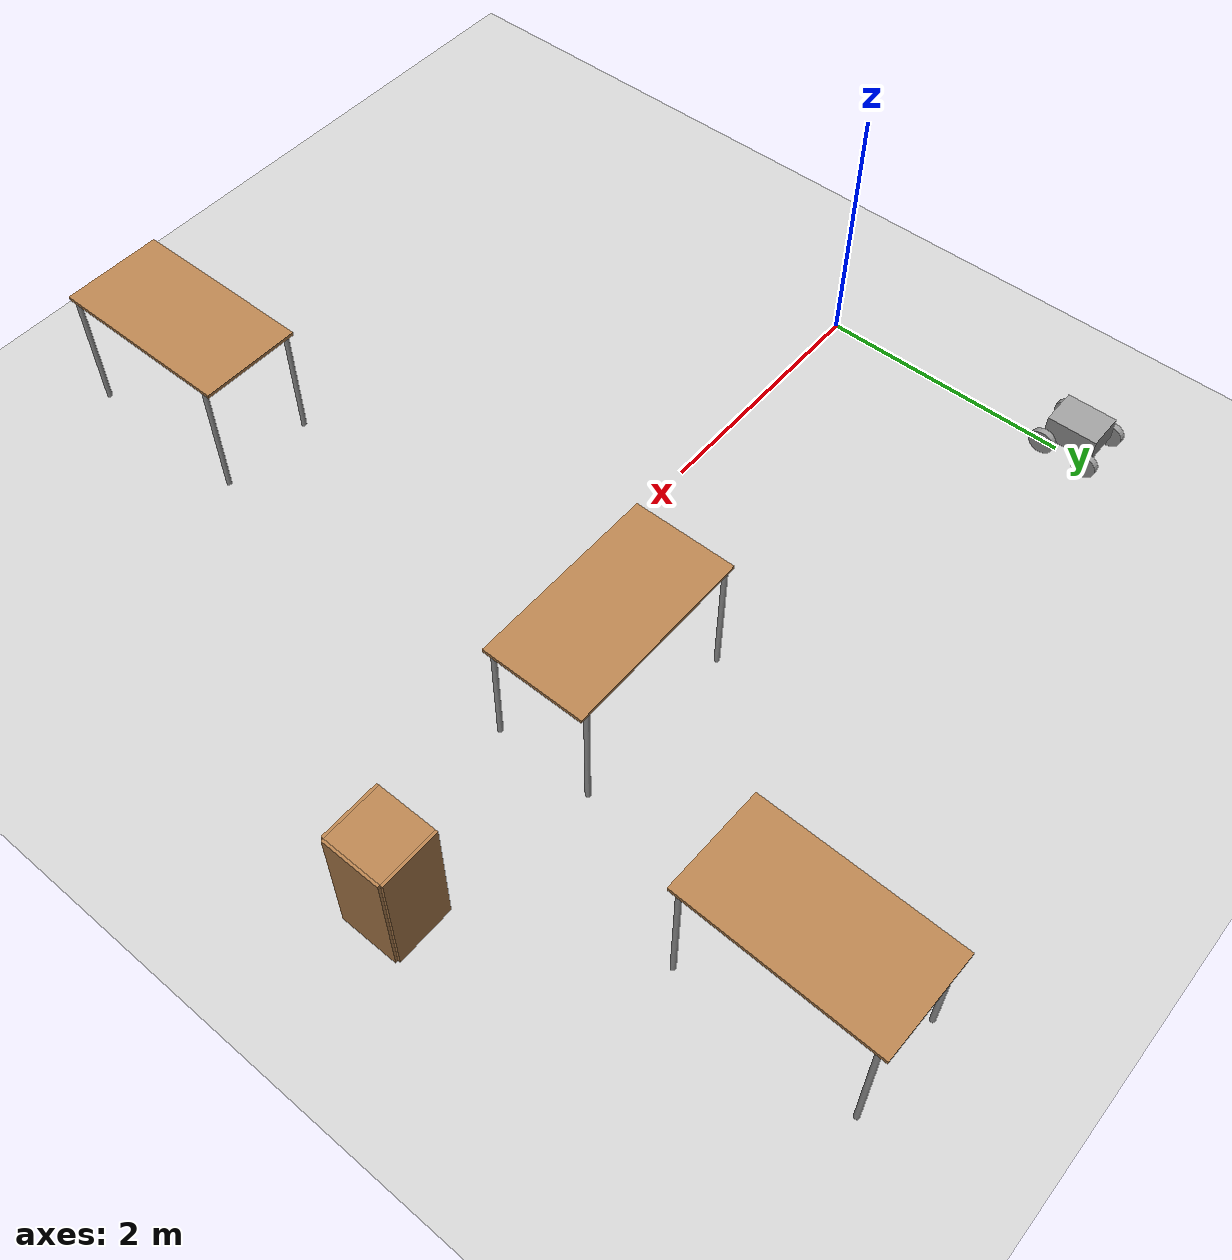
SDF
<sdf version="1.6">
 <world name="default">
  <model name="ground_plane">
   <static>1</static>
   <link name="link">
    <collision name="collision">
     <geometry><plane><normal>0 0 1</normal><size>100 100</size></plane></geometry>
     <surface><friction><ode><mu>100</mu><mu2>50</mu2></ode></friction></surface>
    </collision>
    <visual name="visual">
     <cast_shadows>0</cast_shadows>
     <geometry><plane><normal>0 0 1</normal><size>100 100</size></plane></geometry>
     <material>
      <script><uri>file://media/materials/scripts/gazebo.material</uri><name>Gazebo/Grey</name></script>
     </material>
    </visual>
   </link>
  </model>
  <model name="table_0">
   <static>1</static>
   <link name="link">
    <collision name="surface">
     <pose>0 0 1 0 -0 0</pose>
     <geometry><box><size>1.5 0.8 0.03</size></box></geometry>
     <surface><friction><ode><mu>0.6</mu><mu2>0.6</mu2></ode></friction></surface>
    </collision>
    <visual name="visual1">
     <pose>0 0 1 0 -0 0</pose>
     <geometry><box><size>1.5 0.8 0.03</size></box></geometry>
     <material>
      <script><uri>file://media/materials/scripts/gazebo.material</uri><name>Gazebo/Wood</name></script>
     </material>
    </visual>
    <collision name="front_left_leg">
     <pose>0.68 0.38 0.5 0 -0 0</pose>
     <geometry><cylinder><radius>0.02</radius><length>1</length></cylinder></geometry>
    </collision>
    <visual name="front_left_leg">
     <pose>0.68 0.38 0.5 0 -0 0</pose>
     <geometry><cylinder><radius>0.02</radius><length>1</length></cylinder></geometry>
     <material>
      <script><uri>file://media/materials/scripts/gazebo.material</uri><name>Gazebo/Grey</name></script>
     </material>
    </visual>
    <collision name="front_right_leg">
     <pose>0.68 -0.38 0.5 0 -0 0</pose>
     <geometry><cylinder><radius>0.02</radius><length>1</length></cylinder></geometry>
    </collision>
    <visual name="front_right_leg">
     <pose>0.68 -0.38 0.5 0 -0 0</pose>
     <geometry><cylinder><radius>0.02</radius><length>1</length></cylinder></geometry>
     <material>
      <script><uri>file://media/materials/scripts/gazebo.material</uri><name>Gazebo/Grey</name></script>
     </material>
    </visual>
    <collision name="back_right_leg">
     <pose>-0.68 -0.38 0.5 0 -0 0</pose>
     <geometry><cylinder><radius>0.02</radius><length>1</length></cylinder></geometry>
    </collision>
    <visual name="back_right_leg">
     <pose>-0.68 -0.38 0.5 0 -0 0</pose>
     <geometry><cylinder><radius>0.02</radius><length>1</length></cylinder></geometry>
     <material>
      <script><uri>file://media/materials/scripts/gazebo.material</uri><name>Gazebo/Grey</name></script>
     </material>
    </visual>
    <collision name="back_left_leg">
     <pose>-0.68 0.38 0.5 0 -0 0</pose>
     <geometry><cylinder><radius>0.02</radius><length>1</length></cylinder></geometry>
    </collision>
    <visual name="back_left_leg">
     <pose>-0.68 0.38 0.5 0 -0 0</pose>
     <geometry><cylinder><radius>0.02</radius><length>1</length></cylinder></geometry>
     <material>
      <script><uri>file://media/materials/scripts/gazebo.material</uri><name>Gazebo/Grey</name></script>
     </material>
    </visual>
   </link>
   <pose>3.8393 -3.17845 0 0 0 -1.57539</pose>
  </model>
  <model name="table_2">
   <static>1</static>
   <link name="link">
    <collision name="surface">
     <pose>0 0 1 0 -0 0</pose>
     <geometry><box><size>1.5 0.8 0.03</size></box></geometry>
     <surface><friction><ode><mu>0.6</mu><mu2>0.6</mu2></ode></friction></surface>
    </collision>
    <visual name="visual1">
     <pose>0 0 1 0 -0 0</pose>
     <geometry><box><size>1.5 0.8 0.03</size></box></geometry>
     <material>
      <script><uri>file://media/materials/scripts/gazebo.material</uri><name>Gazebo/Wood</name></script>
     </material>
    </visual>
    <collision name="front_left_leg">
     <pose>0.68 0.38 0.5 0 -0 0</pose>
     <geometry><cylinder><radius>0.02</radius><length>1</length></cylinder></geometry>
    </collision>
    <visual name="front_left_leg">
     <pose>0.68 0.38 0.5 0 -0 0</pose>
     <geometry><cylinder><radius>0.02</radius><length>1</length></cylinder></geometry>
     <material>
      <script><uri>file://media/materials/scripts/gazebo.material</uri><name>Gazebo/Grey</name></script>
     </material>
    </visual>
    <collision name="front_right_leg">
     <pose>0.68 -0.38 0.5 0 -0 0</pose>
     <geometry><cylinder><radius>0.02</radius><length>1</length></cylinder></geometry>
    </collision>
    <visual name="front_right_leg">
     <pose>0.68 -0.38 0.5 0 -0 0</pose>
     <geometry><cylinder><radius>0.02</radius><length>1</length></cylinder></geometry>
     <material>
      <script><uri>file://media/materials/scripts/gazebo.material</uri><name>Gazebo/Grey</name></script>
     </material>
    </visual>
    <collision name="back_right_leg">
     <pose>-0.68 -0.38 0.5 0 -0 0</pose>
     <geometry><cylinder><radius>0.02</radius><length>1</length></cylinder></geometry>
    </collision>
    <visual name="back_right_leg">
     <pose>-0.68 -0.38 0.5 0 -0 0</pose>
     <geometry><cylinder><radius>0.02</radius><length>1</length></cylinder></geometry>
     <material>
      <script><uri>file://media/materials/scripts/gazebo.material</uri><name>Gazebo/Grey</name></script>
     </material>
    </visual>
    <collision name="back_left_leg">
     <pose>-0.68 0.38 0.5 0 -0 0</pose>
     <geometry><cylinder><radius>0.02</radius><length>1</length></cylinder></geometry>
    </collision>
    <visual name="back_left_leg">
     <pose>-0.68 0.38 0.5 0 -0 0</pose>
     <geometry><cylinder><radius>0.02</radius><length>1</length></cylinder></geometry>
     <material>
      <script><uri>file://media/materials/scripts/gazebo.material</uri><name>Gazebo/Grey</name></script>
     </material>
    </visual>
   </link>
   <pose>4.71806 3.06355 0.01204 0 -0 1.54897</pose>
  </model>
  <model name="cabinet_0">
   <static>1</static>
   <link name="cabinet_bottom_plate">
    <inertial>
     <pose>0 0 -1 0 -0 0</pose>
     <inertia><ixx>2.05</ixx><ixy>0</ixy><ixz>0</ixz><iyy>2.05</iyy><iyz>0</iyz><izz>2.05</izz></inertia>
     <mass>25</mass>
    </inertial>
    <collision name="cabinet_bottom_plate_geom">
     <pose>0 0 0.01 0 -0 0</pose>
     <geometry><box><size>0.45 0.45 0.02</size></box></geometry>
    </collision>
    <visual name="cabinet_bottom_plate_geom_visual">
     <pose>0 0 0.01 0 -0 0</pose>
     <geometry><box><size>0.45 0.45 0.02</size></box></geometry>
     <material>
      <script><uri>file://media/materials/scripts/gazebo.material</uri><name>Gazebo/Wood</name></script>
     </material>
    </visual>
    <collision name="cabinet_bottom_plate_geom_cabinet_back_plate">
     <pose>0.235 0 0.51 0 -0 0</pose>
     <geometry><box><size>0.02 0.45 1.02</size></box></geometry>
    </collision>
    <visual name="cabinet_bottom_plate_geom_cabinet_back_plate_visual">
     <pose>0.235 0 0.51 0 -0 0</pose>
     <geometry><box><size>0.02 0.45 1.02</size></box></geometry>
     <material>
      <script><uri>file://media/materials/scripts/gazebo.material</uri><name>Gazebo/Wood</name></script>
     </material>
    </visual>
    <collision name="cabinet_bottom_plate_geom_cabinet_left_plate">
     <pose>0 0.235 0.51 0 -0 0</pose>
     <geometry><box><size>0.45 0.02 1.02</size></box></geometry>
    </collision>
    <visual name="cabinet_bottom_plate_geom_cabinet_left_plate_visual">
     <pose>0 0.235 0.51 0 -0 0</pose>
     <geometry><box><size>0.45 0.02 1.02</size></box></geometry>
     <material>
      <script><uri>file://media/materials/scripts/gazebo.material</uri><name>Gazebo/Wood</name></script>
     </material>
    </visual>
    <collision name="cabinet_bottom_plate_geom_cabinet_middle_plate">
     <pose>0 0 0.51 0 -0 0</pose>
     <geometry><box><size>0.45 0.45 0.02</size></box></geometry>
    </collision>
    <visual name="cabinet_bottom_plate_geom_cabinet_middle_plate_visual">
     <pose>0 0 0.51 0 -0 0</pose>
     <geometry><box><size>0.45 0.45 0.02</size></box></geometry>
     <material>
      <script><uri>file://media/materials/scripts/gazebo.material</uri><name>Gazebo/Wood</name></script>
     </material>
    </visual>
    <collision name="cabinet_bottom_plate_geom_cabinet_right_plate">
     <pose>0 -0.235 0.51 0 -0 0</pose>
     <geometry><box><size>0.45 0.02 1.02</size></box></geometry>
    </collision>
    <visual name="cabinet_bottom_plate_geom_cabinet_right_plate_visual">
     <pose>0 -0.235 0.51 0 -0 0</pose>
     <geometry><box><size>0.45 0.02 1.02</size></box></geometry>
     <material>
      <script><uri>file://media/materials/scripts/gazebo.material</uri><name>Gazebo/Wood</name></script>
     </material>
    </visual>
    <collision name="cabinet_bottom_plate_geom_cabinet_top_plate">
     <pose>0 0 1.01 0 -0 0</pose>
     <geometry><box><size>0.45 0.45 0.02</size></box></geometry>
    </collision>
    <visual name="cabinet_bottom_plate_geom_cabinet_top_plate_visual">
     <pose>0 0 1.01 0 -0 0</pose>
     <geometry><box><size>0.45 0.45 0.02</size></box></geometry>
     <material>
      <script><uri>file://media/materials/scripts/gazebo.material</uri><name>Gazebo/Wood</name></script>
     </material>
    </visual>
   </link>
   <pose>5.8872 0.845437 0 0 -0 0</pose>
  </model>
  <model name="table_3">
   <static>1</static>
   <link name="link">
    <collision name="surface">
     <pose>0 0 1 0 -0 0</pose>
     <geometry><box><size>1.5 0.8 0.03</size></box></geometry>
     <surface><friction><ode><mu>0.6</mu><mu2>0.6</mu2></ode></friction></surface>
    </collision>
    <visual name="visual1">
     <pose>0 0 1 0 -0 0</pose>
     <geometry><box><size>1.5 0.8 0.03</size></box></geometry>
     <material>
      <script><uri>file://media/materials/scripts/gazebo.material</uri><name>Gazebo/Wood</name></script>
     </material>
    </visual>
    <collision name="front_left_leg">
     <pose>0.68 0.38 0.5 0 -0 0</pose>
     <geometry><cylinder><radius>0.02</radius><length>1</length></cylinder></geometry>
    </collision>
    <visual name="front_left_leg">
     <pose>0.68 0.38 0.5 0 -0 0</pose>
     <geometry><cylinder><radius>0.02</radius><length>1</length></cylinder></geometry>
     <material>
      <script><uri>file://media/materials/scripts/gazebo.material</uri><name>Gazebo/Grey</name></script>
     </material>
    </visual>
    <collision name="front_right_leg">
     <pose>0.68 -0.38 0.5 0 -0 0</pose>
     <geometry><cylinder><radius>0.02</radius><length>1</length></cylinder></geometry>
    </collision>
    <visual name="front_right_leg">
     <pose>0.68 -0.38 0.5 0 -0 0</pose>
     <geometry><cylinder><radius>0.02</radius><length>1</length></cylinder></geometry>
     <material>
      <script><uri>file://media/materials/scripts/gazebo.material</uri><name>Gazebo/Grey</name></script>
     </material>
    </visual>
    <collision name="back_right_leg">
     <pose>-0.68 -0.38 0.5 0 -0 0</pose>
     <geometry><cylinder><radius>0.02</radius><length>1</length></cylinder></geometry>
    </collision>
    <visual name="back_right_leg">
     <pose>-0.68 -0.38 0.5 0 -0 0</pose>
     <geometry><cylinder><radius>0.02</radius><length>1</length></cylinder></geometry>
     <material>
      <script><uri>file://media/materials/scripts/gazebo.material</uri><name>Gazebo/Grey</name></script>
     </material>
    </visual>
    <collision name="back_left_leg">
     <pose>-0.68 0.38 0.5 0 -0 0</pose>
     <geometry><cylinder><radius>0.02</radius><length>1</length></cylinder></geometry>
    </collision>
    <visual name="back_left_leg">
     <pose>-0.68 0.38 0.5 0 -0 0</pose>
     <geometry><cylinder><radius>0.02</radius><length>1</length></cylinder></geometry>
     <material>
      <script><uri>file://media/materials/scripts/gazebo.material</uri><name>Gazebo/Grey</name></script>
     </material>
    </visual>
   </link>
   <pose>3.8292 0.836681 0 0 -0 0</pose>
  </model>
  <model name="robot2">
   <link name="link_0">
    <pose>-0.200401 -0.001883 -0.075891 0 -0 0</pose>
    <inertial>
     <mass>1</mass>
     <inertia>
      <ixx>0.166667</ixx>
      <ixy>0</ixy>
      <ixz>0</ixz>
      <iyy>0.166667</iyy>
      <iyz>0</iyz>
      <izz>0.166667</izz>
     </inertia>
    </inertial>
    <visual name="visual">
     <geometry><box><size>0.3 0.4 0.2</size></box></geometry>
     <material>
      <lighting>1</lighting>
      <script><uri>file://media/materials/scripts/gazebo.material</uri><name>Gazebo/Grey</name></script>
      <shader type="pixel"><normal_map>__default__</normal_map></shader>
      <ambient>0.3 0.3 0.3 1</ambient>
      <diffuse>0.7 0.7 0.7 1</diffuse>
      <specular>0.01 0.01 0.01 1</specular>
      <emissive>0 0 0 1</emissive>
     </material>
    </visual>
    <collision name="collision">
     <geometry><box><size>0.3 0.4 0.2</size></box></geometry>
     <surface>
      <friction>
       <ode><mu>1</mu><mu2>1</mu2><fdir1>0 0 0</fdir1><slip1>0</slip1><slip2>0</slip2></ode>
       <torsional>
        <coefficient>1</coefficient>
        <patch_radius>0</patch_radius>
        <surface_radius>0</surface_radius>
        <use_patch_radius>1</use_patch_radius>
        <ode><slip>0</slip></ode>
       </torsional>
      </friction>
      <bounce><restitution_coefficient>0</restitution_coefficient><threshold>1e+06</threshold></bounce>
      <contact>
       <collide_without_contact>0</collide_without_contact>
       <collide_without_contact_bitmask>1</collide_without_contact_bitmask>
       <collide_bitmask>1</collide_bitmask>
       <ode>
        <soft_cfm>0</soft_cfm>
        <soft_erp>0.2</soft_erp>
        <kp>1e+13</kp>
        <kd>1</kd>
        <max_vel>0.01</max_vel>
        <min_depth>0</min_depth>
       </ode>
       <bullet>
        <split_impulse>1</split_impulse>
        <split_impulse_penetration_threshold>-0.01</split_impulse_penetration_threshold>
        <soft_cfm>0</soft_cfm>
        <soft_erp>0.2</soft_erp>
        <kp>1e+13</kp>
        <kd>1</kd>
       </bullet>
      </contact>
     </surface>
    </collision>
   </link>
   <link name="link_1">
    <pose>-0.386156 -0.18012 -0.175891 1.5707 0 1.5707</pose>
    <inertial>
     <mass>1</mass>
     <inertia><ixx>0.145833</ixx><ixy>0</ixy><ixz>0</ixz><iyy>0.145833</iyy><iyz>0</iyz><izz>0.125</izz></inertia>
    </inertial>
    <visual name="visual">
     <geometry><cylinder><radius>0.1</radius><length>0.05</length></cylinder></geometry>
     <material>
      <lighting>1</lighting>
      <script><uri>file://media/materials/scripts/gazebo.material</uri><name>Gazebo/Grey</name></script>
      <shader type="pixel"><normal_map>__default__</normal_map></shader>
      <ambient>0.3 0.3 0.3 1</ambient>
      <diffuse>0.7 0.7 0.7 1</diffuse>
      <specular>0.01 0.01 0.01 1</specular>
      <emissive>0 0 0 1</emissive>
     </material>
    </visual>
    <collision name="collision">
     <geometry><cylinder><radius>0.1</radius><length>0.05</length></cylinder></geometry>
     <surface>
      <friction>
       <ode><mu>1</mu><mu2>1</mu2><fdir1>0 0 0</fdir1><slip1>0</slip1><slip2>0</slip2></ode>
       <torsional>
        <coefficient>1</coefficient>
        <patch_radius>0</patch_radius>
        <surface_radius>0</surface_radius>
        <use_patch_radius>1</use_patch_radius>
        <ode><slip>0</slip></ode>
       </torsional>
      </friction>
      <bounce><restitution_coefficient>0</restitution_coefficient><threshold>1e+06</threshold></bounce>
      <contact>
       <collide_without_contact>0</collide_without_contact>
       <collide_without_contact_bitmask>1</collide_without_contact_bitmask>
       <collide_bitmask>1</collide_bitmask>
       <ode>
        <soft_cfm>0</soft_cfm>
        <soft_erp>0.2</soft_erp>
        <kp>1e+13</kp>
        <kd>1</kd>
        <max_vel>0.01</max_vel>
        <min_depth>0</min_depth>
       </ode>
       <bullet>
        <split_impulse>1</split_impulse>
        <split_impulse_penetration_threshold>-0.01</split_impulse_penetration_threshold>
        <soft_cfm>0</soft_cfm>
        <soft_erp>0.2</soft_erp>
        <kp>1e+13</kp>
        <kd>1</kd>
       </bullet>
      </contact>
     </surface>
    </collision>
   </link>
   <link name="link_1_clone">
    <pose>-0.006156 -0.18012 -0.175891 1.5707 0 1.5707</pose>
    <inertial>
     <mass>1</mass>
     <inertia><ixx>0.145833</ixx><ixy>0</ixy><ixz>0</ixz><iyy>0.145833</iyy><iyz>0</iyz><izz>0.125</izz></inertia>
    </inertial>
    <visual name="visual">
     <geometry><cylinder><radius>0.1</radius><length>0.05</length></cylinder></geometry>
     <material>
      <lighting>1</lighting>
      <script><uri>file://media/materials/scripts/gazebo.material</uri><name>Gazebo/Grey</name></script>
      <shader type="pixel"><normal_map>__default__</normal_map></shader>
      <ambient>0.3 0.3 0.3 1</ambient>
      <diffuse>0.7 0.7 0.7 1</diffuse>
      <specular>0.01 0.01 0.01 1</specular>
      <emissive>0 0 0 1</emissive>
     </material>
    </visual>
    <collision name="collision">
     <geometry><cylinder><radius>0.1</radius><length>0.05</length></cylinder></geometry>
     <surface>
      <friction>
       <ode><mu>1</mu><mu2>1</mu2><fdir1>0 0 0</fdir1><slip1>0</slip1><slip2>0</slip2></ode>
       <torsional>
        <coefficient>1</coefficient>
        <patch_radius>0</patch_radius>
        <surface_radius>0</surface_radius>
        <use_patch_radius>1</use_patch_radius>
        <ode><slip>0</slip></ode>
       </torsional>
      </friction>
      <bounce><restitution_coefficient>0</restitution_coefficient><threshold>1e+06</threshold></bounce>
      <contact>
       <collide_without_contact>0</collide_without_contact>
       <collide_without_contact_bitmask>1</collide_without_contact_bitmask>
       <collide_bitmask>1</collide_bitmask>
       <ode>
        <soft_cfm>0</soft_cfm>
        <soft_erp>0.2</soft_erp>
        <kp>1e+13</kp>
        <kd>1</kd>
        <max_vel>0.01</max_vel>
        <min_depth>0</min_depth>
       </ode>
       <bullet>
        <split_impulse>1</split_impulse>
        <split_impulse_penetration_threshold>-0.01</split_impulse_penetration_threshold>
        <soft_cfm>0</soft_cfm>
        <soft_erp>0.2</soft_erp>
        <kp>1e+13</kp>
        <kd>1</kd>
       </bullet>
      </contact>
     </surface>
    </collision>
   </link>
   <link name="link_1_clone_0">
    <pose>0.003844 0.17988 -0.175891 1.5707 0 1.5707</pose>
    <inertial>
     <mass>1</mass>
     <inertia><ixx>0.145833</ixx><ixy>0</ixy><ixz>0</ixz><iyy>0.145833</iyy><iyz>0</iyz><izz>0.125</izz></inertia>
    </inertial>
    <visual name="visual">
     <geometry><cylinder><radius>0.1</radius><length>0.05</length></cylinder></geometry>
     <material>
      <lighting>1</lighting>
      <script><uri>file://media/materials/scripts/gazebo.material</uri><name>Gazebo/Grey</name></script>
      <shader type="pixel"><normal_map>__default__</normal_map></shader>
      <ambient>0.3 0.3 0.3 1</ambient>
      <diffuse>0.7 0.7 0.7 1</diffuse>
      <specular>0.01 0.01 0.01 1</specular>
      <emissive>0 0 0 1</emissive>
     </material>
    </visual>
    <collision name="collision">
     <geometry><cylinder><radius>0.1</radius><length>0.05</length></cylinder></geometry>
     <surface>
      <friction>
       <ode><mu>1</mu><mu2>1</mu2><fdir1>0 0 0</fdir1><slip1>0</slip1><slip2>0</slip2></ode>
       <torsional>
        <coefficient>1</coefficient>
        <patch_radius>0</patch_radius>
        <surface_radius>0</surface_radius>
        <use_patch_radius>1</use_patch_radius>
        <ode><slip>0</slip></ode>
       </torsional>
      </friction>
      <bounce><restitution_coefficient>0</restitution_coefficient><threshold>1e+06</threshold></bounce>
      <contact>
       <collide_without_contact>0</collide_without_contact>
       <collide_without_contact_bitmask>1</collide_without_contact_bitmask>
       <collide_bitmask>1</collide_bitmask>
       <ode>
        <soft_cfm>0</soft_cfm>
        <soft_erp>0.2</soft_erp>
        <kp>1e+13</kp>
        <kd>1</kd>
        <max_vel>0.01</max_vel>
        <min_depth>0</min_depth>
       </ode>
       <bullet>
        <split_impulse>1</split_impulse>
        <split_impulse_penetration_threshold>-0.01</split_impulse_penetration_threshold>
        <soft_cfm>0</soft_cfm>
        <soft_erp>0.2</soft_erp>
        <kp>1e+13</kp>
        <kd>1</kd>
       </bullet>
      </contact>
     </surface>
    </collision>
   </link>
   <link name="link_1_clone_1">
    <pose>-0.386156 0.17988 -0.175891 1.5707 0 1.5707</pose>
    <inertial>
     <mass>1</mass>
     <inertia><ixx>0.145833</ixx><ixy>0</ixy><ixz>0</ixz><iyy>0.145833</iyy><iyz>0</iyz><izz>0.125</izz></inertia>
    </inertial>
    <visual name="visual">
     <geometry><cylinder><radius>0.1</radius><length>0.05</length></cylinder></geometry>
     <material>
      <lighting>1</lighting>
      <script><uri>file://media/materials/scripts/gazebo.material</uri><name>Gazebo/Grey</name></script>
      <shader type="pixel"><normal_map>__default__</normal_map></shader>
      <ambient>0.3 0.3 0.3 1</ambient>
      <diffuse>0.7 0.7 0.7 1</diffuse>
      <specular>0.01 0.01 0.01 1</specular>
      <emissive>0 0 0 1</emissive>
     </material>
    </visual>
    <collision name="collision">
     <geometry><cylinder><radius>0.1</radius><length>0.05</length></cylinder></geometry>
     <surface>
      <friction>
       <ode><mu>1</mu><mu2>1</mu2><fdir1>0 0 0</fdir1><slip1>0</slip1><slip2>0</slip2></ode>
       <torsional>
        <coefficient>1</coefficient>
        <patch_radius>0</patch_radius>
        <surface_radius>0</surface_radius>
        <use_patch_radius>1</use_patch_radius>
        <ode><slip>0</slip></ode>
       </torsional>
      </friction>
      <bounce><restitution_coefficient>0</restitution_coefficient><threshold>1e+06</threshold></bounce>
      <contact>
       <collide_without_contact>0</collide_without_contact>
       <collide_without_contact_bitmask>1</collide_without_contact_bitmask>
       <collide_bitmask>1</collide_bitmask>
       <ode>
        <soft_cfm>0</soft_cfm>
        <soft_erp>0.2</soft_erp>
        <kp>1e+13</kp>
        <kd>1</kd>
        <max_vel>0.01</max_vel>
        <min_depth>0</min_depth>
       </ode>
       <bullet>
        <split_impulse>1</split_impulse>
        <split_impulse_penetration_threshold>-0.01</split_impulse_penetration_threshold>
        <soft_cfm>0</soft_cfm>
        <soft_erp>0.2</soft_erp>
        <kp>1e+13</kp>
        <kd>1</kd>
       </bullet>
      </contact>
     </surface>
    </collision>
   </link>
   <joint name="link_0_JOINT_0" type="revolute">
    <parent>link_0</parent>
    <child>link_1_clone</child>
    <axis>
     <xyz>1 0 0</xyz>
     <use_parent_model_frame>0</use_parent_model_frame>
     <limit>
      <lower>-1.79769e+308</lower>
      <upper>1.79769e+308</upper>
      <effort>-1</effort>
      <velocity>-1</velocity>
     </limit>
     <dynamics>
      <spring_reference>0</spring_reference>
      <spring_stiffness>0</spring_stiffness>
      <damping>0</damping>
     </dynamics>
    </axis>
    <physics>
     <ode><limit><cfm>0</cfm><erp>0.2</erp></limit><suspension><cfm>0</cfm><erp>0.2</erp></suspension></ode>
    </physics>
   </joint>
   <joint name="link_0_JOINT_1" type="revolute">
    <parent>link_0</parent>
    <child>link_1_clone_0</child>
    <axis>
     <xyz>1 0 0</xyz>
     <use_parent_model_frame>0</use_parent_model_frame>
     <limit>
      <lower>-1.79769e+308</lower>
      <upper>1.79769e+308</upper>
      <effort>-1</effort>
      <velocity>-1</velocity>
     </limit>
     <dynamics>
      <spring_reference>0</spring_reference>
      <spring_stiffness>0</spring_stiffness>
      <damping>0</damping>
     </dynamics>
    </axis>
    <physics>
     <ode><limit><cfm>0</cfm><erp>0.2</erp></limit><suspension><cfm>0</cfm><erp>0.2</erp></suspension></ode>
    </physics>
   </joint>
   <joint name="link_0_JOINT_2" type="revolute">
    <parent>link_0</parent>
    <child>link_1</child>
    <axis>
     <xyz>1 0 0</xyz>
     <use_parent_model_frame>0</use_parent_model_frame>
     <limit>
      <lower>-1.79769e+308</lower>
      <upper>1.79769e+308</upper>
      <effort>-1</effort>
      <velocity>-1</velocity>
     </limit>
     <dynamics>
      <spring_reference>0</spring_reference>
      <spring_stiffness>0</spring_stiffness>
      <damping>0</damping>
     </dynamics>
    </axis>
    <physics>
     <ode><limit><cfm>0</cfm><erp>0.2</erp></limit><suspension><cfm>0</cfm><erp>0.2</erp></suspension></ode>
    </physics>
   </joint>
   <joint name="link_0_JOINT_3" type="revolute">
    <parent>link_0</parent>
    <child>link_1_clone_1</child>
    <axis>
     <xyz>1 0 0</xyz>
     <use_parent_model_frame>0</use_parent_model_frame>
     <limit>
      <lower>-1.79769e+308</lower>
      <upper>1.79769e+308</upper>
      <effort>-1</effort>
      <velocity>-1</velocity>
     </limit>
     <dynamics>
      <spring_reference>0</spring_reference>
      <spring_stiffness>0</spring_stiffness>
      <damping>0</damping>
     </dynamics>
    </axis>
    <physics>
     <ode><limit><cfm>0</cfm><erp>0.2</erp></limit><suspension><cfm>0</cfm><erp>0.2</erp></suspension></ode>
    </physics>
   </joint>
   <static>0</static>
   <pose>0.096353 2.09789 0.275891 0 -0 0.006353</pose>
  </model>
 </world>
</sdf>
